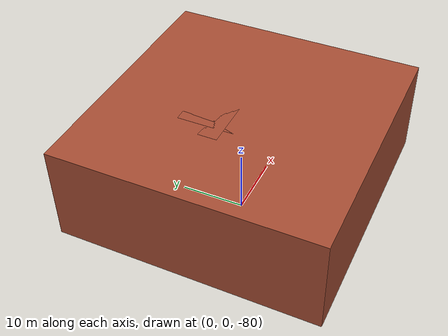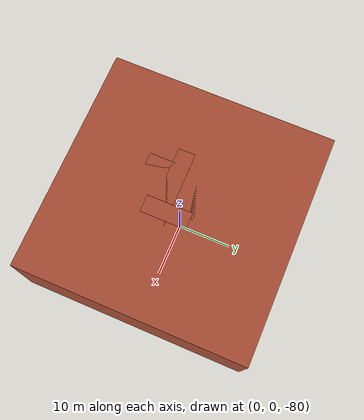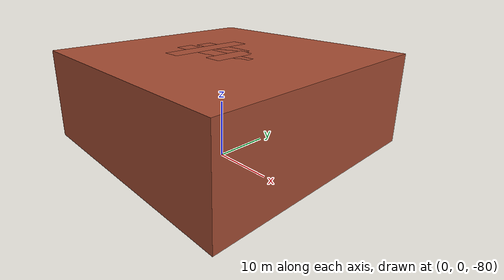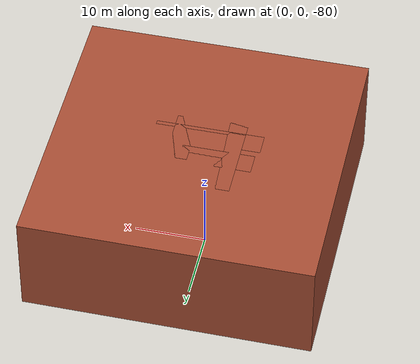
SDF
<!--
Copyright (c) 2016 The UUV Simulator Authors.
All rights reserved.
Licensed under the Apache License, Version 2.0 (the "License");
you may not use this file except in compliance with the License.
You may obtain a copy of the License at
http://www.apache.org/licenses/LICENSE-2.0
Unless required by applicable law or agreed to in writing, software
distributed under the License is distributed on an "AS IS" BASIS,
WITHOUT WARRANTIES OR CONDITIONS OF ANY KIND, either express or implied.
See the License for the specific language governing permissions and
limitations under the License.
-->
<sdf version="1.5">
 <world name="empty_underwater">
  <physics name="default_physics" default="true" type="ode">
   <max_step_size>0.002</max_step_size>
   <real_time_factor>1</real_time_factor>
   <real_time_update_rate>500</real_time_update_rate>
   <ode><solver><type>quick</type><iters>50</iters><sor>0.5</sor></solver></ode>
  </physics>
  <scene>
   <ambient>0.01 0.01 0.01 1.0</ambient>
   <sky><clouds><speed>12</speed></clouds></sky>
   <shadows>1</shadows>
   <fog>
    <color>0.1 0.2 0.3 1.0</color>
    <type>linear</type>
    <density>0.001</density>
    <start>10</start>
    <end>200</end>
   </fog>
  </scene>
  <spherical_coordinates>
   <latitude_deg>56.71897669633431</latitude_deg>
   <longitude_deg>3.515625</longitude_deg>
  </spherical_coordinates>
  <include><uri>model://sun</uri></include>
  <include><uri>model://pipe</uri><pose>0 0 -70 0 0 0</pose></include>
  <plugin name="underwater_current_plugin" filename="libuuv_underwater_current_ros_plugin.so">
   <namespace>hydrodynamics</namespace>
   <constant_current>
    <topic>current_velocity</topic>
    <velocity><mean>0</mean><min>0</min><max>5</max><mu>0.0</mu><noiseAmp>0.0</noiseAmp></velocity>
    <horizontal_angle>
     <mean>0</mean>
     <min>-3.141592653589793238</min>
     <max>3.141592653589793238</max>
     <mu>0.0</mu>
     <noiseAmp>0.0</noiseAmp>
    </horizontal_angle>
    <vertical_angle>
     <mean>0</mean>
     <min>-3.141592653589793238</min>
     <max>3.141592653589793238</max>
     <mu>0.0</mu>
     <noiseAmp>0.0</noiseAmp>
    </vertical_angle>
   </constant_current>
  </plugin>
  <plugin name="sc_interface" filename="libuuv_sc_ros_interface_plugin.so"/>
 </world>
</sdf>

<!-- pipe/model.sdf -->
<sdf version='1.6'>
  <model name='pipe'>
    <pose frame=''>0.655 -2.40011 0 0 -0 0</pose>
    <link name='Wall_0'>
      <collision name='Wall_0_Collision'>
        <geometry>
          <box>
            <size>40 40 15</size>
          </box>
        </geometry>
        <pose frame=''>0 0 1.25 0 -0 0</pose>
      </collision>
      <visual name='Wall_0_Visual'>
        <pose frame=''>0 0 1.25 0 -0 0</pose>
        <geometry>
          <box>
            <size>40 40 15</size>
          </box>
        </geometry>
        <material>
          <script>
            <uri>file://media/materials/scripts/gazebo.material</uri>
            <name>Gazebo/Bricks</name>
          </script>
          <ambient>0.996078 0.47451 0.0196078 1</ambient>
        </material>
        <meta>
          <layer>0</layer>
        </meta>
      </visual>
      <pose frame=''>1 -0.059891 0 0 -0 0</pose>
    </link>
    <link name='Wall_1'>
      <collision name='Wall_1_Collision'>
        <geometry>
          <box>
            <size>8 3 15</size>
          </box>
        </geometry>
        <pose frame=''>0 0 1.25 0 -0 0</pose>
      </collision>
      <visual name='Wall_1_Visual'>
        <pose frame=''>0 0 1.25 0 -0 0</pose>
        <geometry>
          <box>
            <size>8 3 15</size>
          </box>
        </geometry>
        <material>
          <script>
            <uri>file://media/materials/scripts/gazebo.material</uri>
            <name>Gazebo/Bricks</name>
          </script>
          <ambient>0.996078 0.47451 0.0196078 1</ambient>
        </material>
        <meta>
          <layer>0</layer>
        </meta>
      </visual>
      <pose frame=''>3.425 -0.984891 0 0 -0 -1.5708</pose>
    </link>
    <link name='Wall_2'>
      <collision name='Wall_2_Collision'>
        <geometry>
          <box>
            <size>15 3 15</size>
          </box>
        </geometry>
        <pose frame=''>0 0 1.25 0 -0 0</pose>
      </collision>
      <visual name='Wall_2_Visual'>
        <pose frame=''>0 0 1.25 0 -0 0</pose>
        <geometry>
          <box>
            <size>15 3 15</size>
          </box>
        </geometry>
        <material>
          <script>
            <uri>file://media/materials/scripts/gazebo.material</uri>
            <name>Gazebo/Bricks</name>
          </script>
          <ambient>0.996078 0.47451 0.0196078 1</ambient>
        </material>
        <meta>
          <layer>0</layer>
        </meta>
      </visual>
      <pose frame=''>0 -1.91989 0 0 -0 -3.13867</pose>
    </link>
    <link name='Wall_3'>
      <collision name='Wall_3_Collision'>
        <geometry>
          <box>
            <size>15 3 15</size>
          </box>
        </geometry>
        <pose frame=''>0 0 1.25 0 -0 0</pose>
      </collision>
      <visual name='Wall_3_Visual'>
        <pose frame=''>0 0 1.25 0 -0 0</pose>
        <geometry>
          <box>
            <size>15 3 15</size>
          </box>
        </geometry>
        <material>
          <script>
            <uri>file://media/materials/scripts/gazebo.material</uri>
            <name>Gazebo/Bricks</name>
          </script>
          <ambient>0.996078 0.47451 0.0196078 1</ambient>
        </material>
        <meta>
          <layer>0</layer>
        </meta>
      </visual>
      <pose frame=''>-3.425 0.005109 0 0 -0 1.5708</pose>
    </link>
    <link name='Wall_4'>
      <collision name='Wall_4_Collision'>
        <geometry>
          <box>
            <size>10 3 15</size>
          </box>
        </geometry>
        <pose frame=''>0 0 1.25 0 -0 0</pose>
      </collision>
      <visual name='Wall_4_Visual'>
        <pose frame=''>0 0 1.25 0 -0 0</pose>
        <geometry>
          <box>
            <size>10 3 15</size>
          </box>
        </geometry>
        <material>
          <script>
            <uri>file://media/materials/scripts/gazebo.material</uri>
            <name>Gazebo/Bricks</name>
          </script>
          <ambient>0.996078 0.47451 0.0196078 1</ambient>
        </material>
        <meta>
          <layer>0</layer>
        </meta>
      </visual>
      <pose frame=''>-2 1.93011 0 0 -0 0</pose>
    </link>
    <static>1</static>
  </model>
</sdf>
